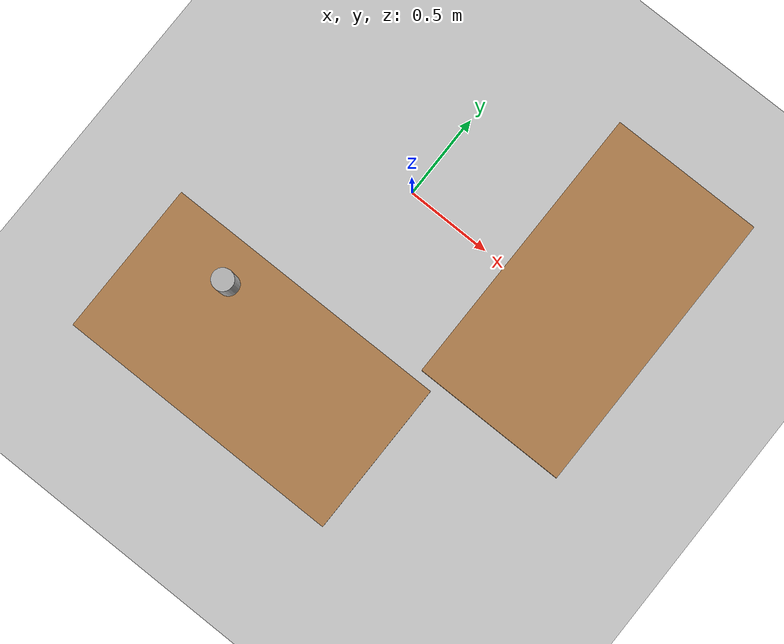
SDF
<sdf version="1.6">
 <world name="default">
  <scene>
   <ambient>0.2 0.2 0.2 1</ambient>
   <background>1 1 1 1</background>
   <shadows>0</shadows>
   <grid>0</grid>
   <origin_visual>0</origin_visual>
  </scene>
  <gravity>0 0 -9.8</gravity>
  <magnetic_field>6e-06 2.3e-05 -4.2e-05</magnetic_field>
  <atmosphere type="adiabatic"/>
  <physics name="dart_2ms" default="1" type="dart">
   <max_step_size>0.002</max_step_size>
   <real_time_factor>1</real_time_factor>
   <real_time_update_rate>500</real_time_update_rate>
  </physics>
  <spherical_coordinates>
   <surface_model>EARTH_WGS84</surface_model>
   <latitude_deg>0</latitude_deg>
   <longitude_deg>0</longitude_deg>
   <elevation>0</elevation>
   <heading_deg>0</heading_deg>
  </spherical_coordinates>
  <model name="ground_plane">
   <static>1</static>
   <link name="link">
    <collision name="collision">
     <geometry><plane><normal>0 0 1</normal><size>100 100</size></plane></geometry>
     <surface>
      <contact><collide_bitmask>65535</collide_bitmask></contact>
      <friction><ode><mu>100</mu><mu2>50</mu2></ode></friction>
     </surface>
    </collision>
    <visual name="visual">
     <cast_shadows>0</cast_shadows>
     <geometry><plane><normal>0 0 1</normal><size>100 100</size></plane></geometry>
     <material>
      <script><uri>file://media/materials/scripts/gazebo.material</uri><name>Gazebo/Grey</name></script>
     </material>
    </visual>
   </link>
  </model>
  <light name="user_point_light_0" type="point">
   <pose>3.7512 -1.71142 1 0 -0 0</pose>
   <diffuse>0.5 0.5 0.5 1</diffuse>
   <specular>0.1 0.1 0.1 1</specular>
   <attenuation>
    <range>20</range>
    <constant>0.5</constant>
    <linear>0.01</linear>
    <quadratic>0.001</quadratic>
   </attenuation>
   <cast_shadows>0</cast_shadows>
   <direction>0 0 -1</direction>
  </light>
  <model name="table">
   <static>1</static>
   <link name="link">
    <collision name="surface">
     <pose>0 0 1 0 -0 0</pose>
     <geometry><box><size>1.5 0.8 0.03</size></box></geometry>
     <surface><friction><ode><mu>0.6</mu><mu2>0.6</mu2></ode></friction></surface>
    </collision>
    <visual name="visual1">
     <pose>0 0 1 0 -0 0</pose>
     <geometry><box><size>1.5 0.8 0.03</size></box></geometry>
     <material>
      <script><uri>file://media/materials/scripts/gazebo.material</uri><name>Gazebo/Wood</name></script>
     </material>
    </visual>
    <collision name="front_left_leg">
     <pose>0.68 0.38 0.5 0 -0 0</pose>
     <geometry><cylinder><radius>0.02</radius><length>1</length></cylinder></geometry>
    </collision>
    <visual name="front_left_leg">
     <pose>0.68 0.38 0.5 0 -0 0</pose>
     <geometry><cylinder><radius>0.02</radius><length>1</length></cylinder></geometry>
     <material>
      <script><uri>file://media/materials/scripts/gazebo.material</uri><name>Gazebo/Grey</name></script>
     </material>
    </visual>
    <collision name="front_right_leg">
     <pose>0.68 -0.38 0.5 0 -0 0</pose>
     <geometry><cylinder><radius>0.02</radius><length>1</length></cylinder></geometry>
    </collision>
    <visual name="front_right_leg">
     <pose>0.68 -0.38 0.5 0 -0 0</pose>
     <geometry><cylinder><radius>0.02</radius><length>1</length></cylinder></geometry>
     <material>
      <script><uri>file://media/materials/scripts/gazebo.material</uri><name>Gazebo/Grey</name></script>
     </material>
    </visual>
    <collision name="back_right_leg">
     <pose>-0.68 -0.38 0.5 0 -0 0</pose>
     <geometry><cylinder><radius>0.02</radius><length>1</length></cylinder></geometry>
    </collision>
    <visual name="back_right_leg">
     <pose>-0.68 -0.38 0.5 0 -0 0</pose>
     <geometry><cylinder><radius>0.02</radius><length>1</length></cylinder></geometry>
     <material>
      <script><uri>file://media/materials/scripts/gazebo.material</uri><name>Gazebo/Grey</name></script>
     </material>
    </visual>
    <collision name="back_left_leg">
     <pose>-0.68 0.38 0.5 0 -0 0</pose>
     <geometry><cylinder><radius>0.02</radius><length>1</length></cylinder></geometry>
    </collision>
    <visual name="back_left_leg">
     <pose>-0.68 0.38 0.5 0 -0 0</pose>
     <geometry><cylinder><radius>0.02</radius><length>1</length></cylinder></geometry>
     <material>
      <script><uri>file://media/materials/scripts/gazebo.material</uri><name>Gazebo/Grey</name></script>
     </material>
    </visual>
   </link>
   <pose>0 -1.2 0 0 -0 0</pose>
  </model>
  <model name="table_0">
   <static>1</static>
   <link name="link">
    <collision name="surface">
     <pose>0 0 1 0 -0 0</pose>
     <geometry><box><size>1.5 0.8 0.03</size></box></geometry>
     <surface><friction><ode><mu>0.6</mu><mu2>0.6</mu2></ode></friction></surface>
    </collision>
    <visual name="visual1">
     <pose>0 0 1 0 -0 0</pose>
     <geometry><box><size>1.5 0.8 0.03</size></box></geometry>
     <material>
      <script><uri>file://media/materials/scripts/gazebo.material</uri><name>Gazebo/Wood</name></script>
     </material>
    </visual>
    <collision name="front_left_leg">
     <pose>0.68 0.38 0.5 0 -0 0</pose>
     <geometry><cylinder><radius>0.02</radius><length>1</length></cylinder></geometry>
    </collision>
    <visual name="front_left_leg">
     <pose>0.68 0.38 0.5 0 -0 0</pose>
     <geometry><cylinder><radius>0.02</radius><length>1</length></cylinder></geometry>
     <material>
      <script><uri>file://media/materials/scripts/gazebo.material</uri><name>Gazebo/Grey</name></script>
     </material>
    </visual>
    <collision name="front_right_leg">
     <pose>0.68 -0.38 0.5 0 -0 0</pose>
     <geometry><cylinder><radius>0.02</radius><length>1</length></cylinder></geometry>
    </collision>
    <visual name="front_right_leg">
     <pose>0.68 -0.38 0.5 0 -0 0</pose>
     <geometry><cylinder><radius>0.02</radius><length>1</length></cylinder></geometry>
     <material>
      <script><uri>file://media/materials/scripts/gazebo.material</uri><name>Gazebo/Grey</name></script>
     </material>
    </visual>
    <collision name="back_right_leg">
     <pose>-0.68 -0.38 0.5 0 -0 0</pose>
     <geometry><cylinder><radius>0.02</radius><length>1</length></cylinder></geometry>
    </collision>
    <visual name="back_right_leg">
     <pose>-0.68 -0.38 0.5 0 -0 0</pose>
     <geometry><cylinder><radius>0.02</radius><length>1</length></cylinder></geometry>
     <material>
      <script><uri>file://media/materials/scripts/gazebo.material</uri><name>Gazebo/Grey</name></script>
     </material>
    </visual>
    <collision name="back_left_leg">
     <pose>-0.68 0.38 0.5 0 -0 0</pose>
     <geometry><cylinder><radius>0.02</radius><length>1</length></cylinder></geometry>
    </collision>
    <visual name="back_left_leg">
     <pose>-0.68 0.38 0.5 0 -0 0</pose>
     <geometry><cylinder><radius>0.02</radius><length>1</length></cylinder></geometry>
     <material>
      <script><uri>file://media/materials/scripts/gazebo.material</uri><name>Gazebo/Grey</name></script>
     </material>
    </visual>
   </link>
   <pose>1.05593 0.000155 0 0 -0 1.57</pose>
  </model>
  <model name="beer">
   <link name="link">
    <pose>0 0 0.115 0 -0 0</pose>
    <inertial>
     <mass>0.2</mass>
     <inertia><ixx>0.00058</ixx><ixy>0</ixy><ixz>0</ixz><iyy>0.00058</iyy><iyz>0</iyz><izz>0.00019</izz></inertia>
    </inertial>
    <collision name="collision">
     <geometry><cylinder><radius>0.055</radius><length>0.23</length></cylinder></geometry>
    </collision>
    <visual name="visual">
     <geometry><cylinder><radius>0.055</radius><length>0.23</length></cylinder></geometry>
     <material>
      <script>
       <uri>model://beer/materials/scripts</uri>
       <uri>model://beer/materials/textures</uri>
       <name>Beer/Diffuse</name>
      </script>
     </material>
    </visual>
   </link>
   <pose>-0.294794 -1 1.05 0 -0 0</pose>
  </model>
 </world>
</sdf>
